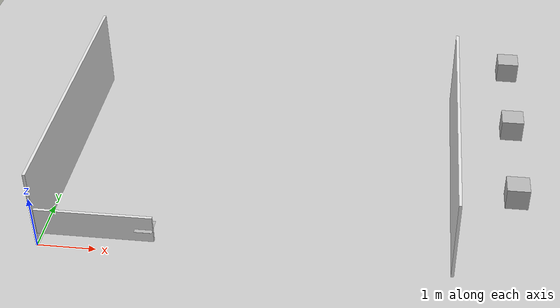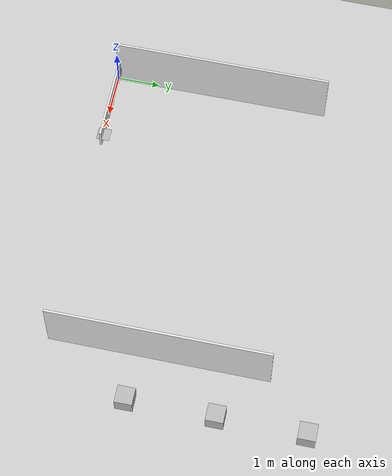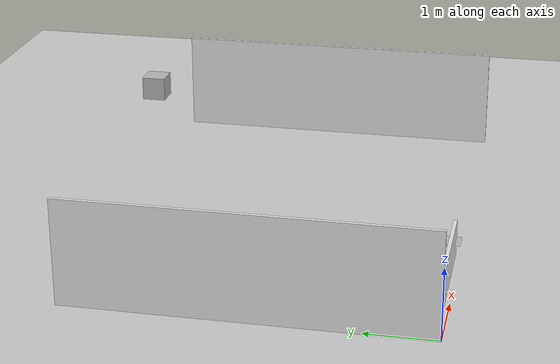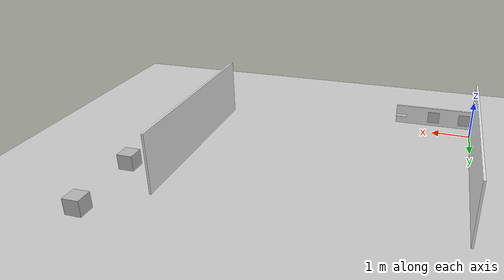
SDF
<?xml version="1.0" ?>
<sdf version="1.6">
  <world name="default">
    <include>
      <uri>model://ground_plane</uri>
    </include>
    <include>
      <uri>model://sun</uri>
    </include>
    <include>
      <uri>model://west_wall</uri>
    </include>
    <include>
      <uri>model://east_wall</uri>
    </include>
    <include>
      <uri>model://tag_wall</uri>
    </include>
    <include>
      <uri>model://apriltag_cube_0</uri>
      <name>apriltag_cube_0</name>
      <pose>8 2 0.2 0 0 0</pose>
    </include>
    <include>
      <uri>model://apriltag_cube_1</uri>
      <name>apriltag_cube_1</name>
      <pose>8 4 0.2 0 0 0</pose>
    </include>
    <include>
      <uri>model://apriltag_cube_2</uri>
      <name>apriltag_cube_2</name>
      <pose>8 6 0.2 0 0 0</pose>
    </include>

    <gui fullscreen="0">
      <camera name="user_camera">
        <pose>0.5 -4 2.2 0 0.35 1.57</pose>
      </camera>
    </gui>
  </world>
</sdf>

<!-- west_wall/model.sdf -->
<sdf version="1.6">
  <model name="west_wall">
    <static>true</static>
    <pose>0 0 0 0 0 0</pose>

    <link name="wall">
      <collision name="wall_collision">
        <pose>0 2.5 0.75 0 0 0</pose>
        <geometry>
          <box>
            <size>0.05 5.0 1.5</size>
          </box>
        </geometry>
      </collision>
      <visual name="wall_visual">
        <pose>0 2.5 0.75 0 0 0</pose>
        <geometry>
          <box>
            <size>0.05 5.0 1.5</size>
          </box>
        </geometry>
        <material>
          <ambient>0.9 0.9 0.9 1</ambient>
          <diffuse>0.9 0.9 0.9 1</diffuse>
        </material>
      </visual>

    </link>
  </model>
</sdf>

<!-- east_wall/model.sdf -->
<sdf version="1.6">
  <model name="east_wall">
    <static>true</static>
    <pose>6.88 0 0 0 0 0</pose>

    <link name="wall">
      <collision name="wall_collision">
        <pose>0 2.5 0.75 0 0 0</pose>
        <geometry>
          <box>
            <size>0.05 5.0 1.5</size>
          </box>
        </geometry>
      </collision>
      <visual name="wall_visual">
        <pose>0 2.5 0.75 0 0 0</pose>
        <geometry>
          <box>
            <size>0.05 5.0 1.5</size>
          </box>
        </geometry>
        <material>
          <ambient>0.9 0.9 0.9 1</ambient>
          <diffuse>0.9 0.9 0.9 1</diffuse>
        </material>
      </visual>
    </link>
  </model>
</sdf>

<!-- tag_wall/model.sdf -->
<sdf version="1.6">
  <model name="tag_wall">
    <static>true</static>
    <pose>0 0 0 0 0 0</pose>

    <link name="wall">
      <collision name="wall_collision">
        <pose>1.0 0.05 0.5 0 0 0</pose>
        <geometry>
          <box>
            <size>2.0 0.05 0.5</size>
          </box>
        </geometry>
      </collision>
      <visual name="wall_visual">
        <pose>1.0 0.05 0.5 0 0 0</pose>
        <geometry>
          <box>
            <size>2.0 0.05 0.5</size>
          </box>
        </geometry>
        <material>
          <ambient>0.9 0.9 0.9 1</ambient>
          <diffuse>0.9 0.9 0.9 1</diffuse>
        </material>
      </visual>

      <visual name="tag_0_panel">
        <pose>0.2 0.10 0.5 -1.57079632679 0 0</pose>
        <geometry>
          <plane>
            <normal>0 0 1</normal>
            <size>0.30 0.30</size>
          </plane>
        </geometry>
        <material>
          <script>
            <uri>model://tag_wall/materials/scripts</uri>
            <uri>model://tag_wall/materials/textures</uri>
            <name>TagWall/Tag0</name>
          </script>
        </material>
      </visual>

      <visual name="tag_1_panel">
        <pose>1.0 0.10 0.5 -1.57079632679 0 0</pose>
        <geometry>
          <plane>
            <normal>0 0 1</normal>
            <size>0.30 0.30</size>
          </plane>
        </geometry>
        <material>
          <script>
            <uri>model://tag_wall/materials/scripts</uri>
            <uri>model://tag_wall/materials/textures</uri>
            <name>TagWall/Tag1</name>
          </script>
        </material>
      </visual>

      <visual name="tag_2_panel">
        <pose>1.85 0.10 0.5 -1.57 0 0</pose>
        <geometry>
          <plane>
            <normal>0 1 0</normal>
            <size>0.30 0.30</size>
          </plane>
        </geometry>
        <material>
          <script>
            <uri>model://tag_wall/materials/scripts</uri>
            <uri>model://tag_wall/materials/textures</uri>
            <name>TagWall/Tag2</name>
          </script>
        </material>
      </visual>
    </link>
  </model>
</sdf>

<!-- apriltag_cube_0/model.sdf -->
<sdf version="1.6">
  <model name="apriltag_cube_0">
    <static>true</static>
    <link name="cube_link">
      <pose>0 0 0 0 0 0</pose>
      <collision name="collision">
        <geometry>
          <box>
            <size>0.4 0.4 0.4</size>
          </box>
        </geometry>
      </collision>
      <visual name="visual">
        <geometry>
          <box>
            <size>0.4 0.4 0.4</size>
          </box>
        </geometry>
        <material>
          <script>
            <uri>model://apriltag_cube_0/materials/scripts</uri>
            <uri>model://apriltag_cube_0/materials/textures</uri>
            <name>AprilTag/Cube0</name>
          </script>
        </material>
        <cast_shadows>false</cast_shadows>
      </visual>
    </link>
  </model>
</sdf>

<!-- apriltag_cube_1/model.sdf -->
<sdf version="1.6">
  <model name="apriltag_cube_1">
    <static>true</static>
    <link name="cube_link">
      <pose>0 0 0 0 0 0</pose>
      <collision name="collision">
        <geometry>
          <box>
            <size>0.4 0.4 0.4</size>
          </box>
        </geometry>
      </collision>
      <visual name="visual">
        <geometry>
          <box>
            <size>0.4 0.4 0.4</size>
          </box>
        </geometry>
        <material>
          <script>
            <uri>model://apriltag_cube_1/materials/scripts</uri>
            <uri>model://apriltag_cube_1/materials/textures</uri>
            <name>AprilTag/Cube1</name>
          </script>
        </material>
        <cast_shadows>false</cast_shadows>
      </visual>
    </link>
  </model>
</sdf>

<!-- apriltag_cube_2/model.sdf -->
<sdf version="1.6">
  <model name="apriltag_cube_2">
    <static>true</static>
    <link name="cube_link">
      <pose>0 0 0 0 0 0</pose>
      <collision name="collision">
        <geometry>
          <box>
            <size>0.4 0.4 0.4</size>
          </box>
        </geometry>
      </collision>
      <visual name="visual">
        <geometry>
          <box>
            <size>0.4 0.4 0.4</size>
          </box>
        </geometry>
        <material>
          <script>
            <uri>model://apriltag_cube_2/materials/scripts</uri>
            <uri>model://apriltag_cube_2/materials/textures</uri>
            <name>AprilTag/Cube2</name>
          </script>
        </material>
        <cast_shadows>false</cast_shadows>
      </visual>
    </link>
  </model>
</sdf>
